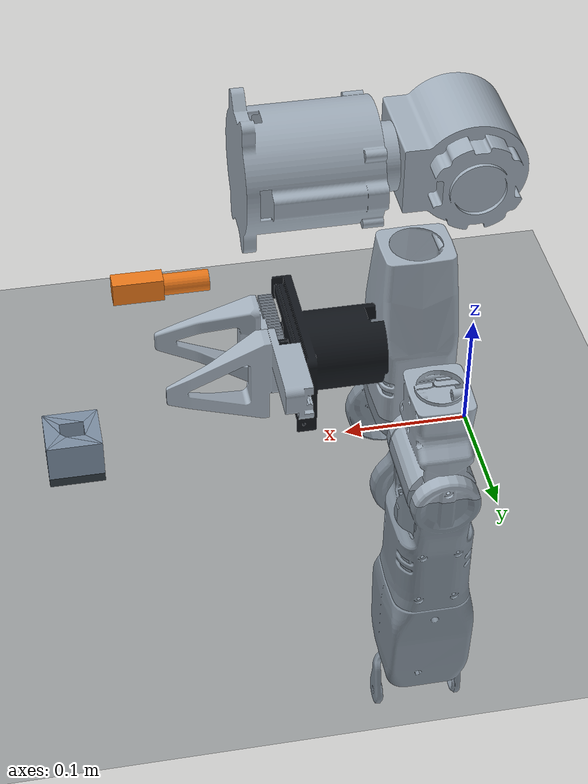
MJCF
<mujoco model="Official YAM articulated keyed insertion">
  <compiler angle="radian" />
  <asset>
    <mesh name="base" content_type="model/stl" file="../../assets/robots/yam/v1/assets/base.stl" />
    <mesh name="gripper" content_type="model/stl" file="../../assets/robots/yam/v1/assets/gripper.stl" />
    <mesh name="link1" content_type="model/stl" file="../../assets/robots/yam/v1/assets/link1.stl" />
    <mesh name="link2" content_type="model/stl" file="../../assets/robots/yam/v1/assets/link2.stl" />
    <mesh name="link3" content_type="model/stl" file="../../assets/robots/yam/v1/assets/link3.stl" />
    <mesh name="link4" content_type="model/stl" file="../../assets/robots/yam/v1/assets/link4.stl" />
    <mesh name="link5" content_type="model/stl" file="../../assets/robots/yam/v1/assets/link5.stl" />
    <mesh name="tip_left" content_type="model/stl" file="../../assets/robots/yam/v1/assets/tip_left.stl" />
    <mesh name="tip_right" content_type="model/stl" file="../../assets/robots/yam/v1/assets/tip_right.stl" />
    <mesh name="peg" file="../keyed_insertion/assets/peg.stl" />
    <mesh name="wall0" file="../keyed_insertion/assets/wall_0.stl" />
    <mesh name="wall1" file="../keyed_insertion/assets/wall_1.stl" />
    <mesh name="wall2" file="../keyed_insertion/assets/wall_2.stl" />
    <mesh name="wall3" file="../keyed_insertion/assets/wall_3.stl" />
    <mesh name="wall4" file="../keyed_insertion/assets/wall_4.stl" />
    <mesh name="wall5" file="../keyed_insertion/assets/wall_5.stl" />
    <mesh name="wall6" file="../keyed_insertion/assets/wall_6.stl" />
    <mesh name="wall7" file="../keyed_insertion/assets/wall_7.stl" />
    <mesh name="wall8" file="../keyed_insertion/assets/wall_8.stl" />
    <texture name="studio_sky" type="skybox" builtin="gradient" rgb1=".72 .79 .86" rgb2=".94 .96 .98" width="512" height="3072" />
    <material name="studio_arm" rgba=".63 .68 .73 1" specular=".65" shininess=".65" reflectance=".03" />
    <material name="studio_dark" rgba=".07 .085 .105 1" specular=".3" shininess=".35" reflectance="0" />
    <material name="studio_socket" rgba=".48 .55 .63 1" specular=".75" shininess=".7" reflectance=".05" />
    <material name="studio_peg" rgba=".92 .47 .10 1" specular=".55" shininess=".6" reflectance=".02" />
    <material name="studio_bench" rgba=".18 .215 .245 1" specular=".2" shininess=".2" reflectance="0" />
  </asset>
  <worldbody>
    <body name="base">
      <inertial pos="-3.83909e-05 2.40069e-05 0.0247678" quat="0.500738 0.500087 -0.499793 0.499381" mass="0.873654" diaginertia="0.00169404 0.00157059 0.000678306" />
      <geom pos="0.0374957 0.0464006 0.187501" quat="-1.29867e-06 -0.707108 -1.29868e-06 0.707105" type="mesh" contype="2" conaffinity="1" group="0" density="0" mesh="base" name="yam_geom_0" material="studio_arm" />
      <body name="link1" pos="-2.49778e-07 0 0.068" quat="-1.29867e-06 -0.707108 -1.29868e-06 0.707105">
        <inertial pos="-0.0233636 -0.00172503 -0.00727828" quat="0.350044 0.317088 -0.649919 0.595424" mass="0.101218" diaginertia="0.000134913 0.000106251 4.71815e-05" />
        <joint name="joint1" range="-2.61799 3.14159" actuatorfrcrange="-10 10" axis="-1 0 0" damping=".15" armature=".015" />
        <geom pos="-0.119501 -0.0464 -0.0374968" quat="1 0 0 0" type="mesh" contype="2" conaffinity="1" group="0" density="0" mesh="link1" name="yam_geom_1" material="studio_arm" />
        <body name="link2" pos="-0.0455 -0.0339 -0.02" quat="1.32679e-06 0 0 -1">
          <inertial pos="0.000134495 -0.0331253 0.129165" quat="1 0.000113256 1.56201e-05 -8.02079e-05" mass="1.46908" diaginertia="0.0146686 0.014599 0.000800088" />
          <joint name="joint2" range="0 3.66519" actuatorfrcrange="-10 10" axis="0 1 0" damping=".15" armature=".015" />
          <geom pos="-0.0740001 -0.08025 -0.0174977" quat="1 0 0 0" type="mesh" contype="2" conaffinity="1" group="0" density="0" mesh="link2" name="yam_geom_2" material="studio_arm" />
          <body name="link3" pos="4.08431e-07 -0.0688 0.264" quat="1.32679e-06 0 0 -1">
            <inertial pos="-0.0556042 -0.0340514 -0.135083" quat="0.990999 0.00518347 0.0472812 0.125137" mass="0.982553" diaginertia="0.00765198 0.0076296 0.000876442" />
            <joint name="joint3" range="0 3.14159" actuatorfrcrange="-10 10" axis="0 1 0" damping=".15" armature=".015" />
            <geom pos="-0.0740003 -0.0813 -0.281499" type="mesh" contype="2" conaffinity="1" group="0" density="0" mesh="link3" name="yam_geom_3" material="studio_arm" />
            <body name="link4" pos="-0.0600003 -0.0688 -0.244999" quat="1 0 0 0">
              <inertial pos="-0.0550959 0.032726 -0.0575534" quat="0.127536 0.44423 0.0147443 0.886666" mass="0.462165" diaginertia="0.000787888 0.00076643 0.00028779" />
              <joint name="joint4" range="-1.69297 1.5708" actuatorfrcrange="-10 10" axis="0 1 0" damping=".15" armature=".015" />
              <geom pos="-0.0140003 -0.0125 -0.0364989" quat="1 0 0 0" type="mesh" contype="2" conaffinity="1" group="0" density="0" mesh="link4" name="yam_geom_4" material="studio_arm" />
              <body name="link5" pos="-0.0405003 0.0338995 -0.0739989" quat="1 0 0 0">
                <inertial pos="0.0375847 -3.55003e-05 -0.000825911" quat="0.661372 -0.253166 -0.247107 0.661387" mass="0.403307" diaginertia="0.000219794 0.000195686 0.000169647" />
                <joint name="joint5" range="-1.5708 1.5708" actuatorfrcrange="-10 10" axis="1 0 0" damping=".15" armature=".015" />
                <geom pos="0.0265 -0.0463995 0.0375" quat="1 0 0 0" type="mesh" contype="2" conaffinity="1" group="0" density="0" mesh="link5" name="yam_geom_5" material="studio_arm" />
                <body name="gripper" pos="0.0404996 2.39858e-07 -0.0356" quat="1 0 0 0">
                  <inertial pos="-3.57064e-05 0.000249371 -0.0293133" quat="0.667981 0.744113 -0.0043308 0.00882784" mass="0.553219" diaginertia="0.000409687 0.000369758 0.000324415" />
                  <joint name="joint6" range="-2.0944 2.0944" actuatorfrcrange="-10 10" axis="0 0 -1" damping=".15" armature=".015" />
                  <geom pos="-0.014 -0.0463995 0.0731" quat="1 0 0 0" type="mesh" contype="2" conaffinity="1" group="0" density="0" mesh="gripper" name="yam_geom_6" material="studio_dark" />
                  <body name="tip_left" pos="-0.0239931 0.0145119 -0.0566829" quat="1 0 0 0">
                    <inertial pos="0.014584 -0.042586 -0.0228318" quat="0.80517 -0.425818 -0.124987 0.393393" mass="0.069657" diaginertia="6.18569e-05 5.94605e-05 2.79862e-05" />
                    <geom pos="0.00999321 -0.0914614 0.129783" type="mesh" contype="2" conaffinity="1" group="0" density="0" mesh="tip_left" name="yam_geom_7" material="studio_arm" />
                  </body>
                  <body name="tip_right" pos="0.0239931 -0.0145119 -0.0566829" quat="1 0 0 0">
                    <inertial pos="-0.014584 0.042586 -0.0228318" quat="0.80517 0.425818 0.124987 0.393393" mass="0.069657" diaginertia="6.18569e-05 5.94605e-05 2.79862e-05" />
                    <geom pos="-0.0379932 -0.00133753 0.129783" quat="1 0 0 0" type="mesh" contype="2" conaffinity="1" group="0" density="0" mesh="tip_right" name="yam_geom_8" material="studio_arm" />
                  </body>
                  <body name="held_peg" pos="0 0 -.17">
                    <inertial pos="0 0 .019" mass=".025" diaginertia=".0000035 .0000035 .000001" />
                    <geom name="peg" type="mesh" mesh="peg" contype="2" conaffinity="1" material="studio_peg" />
                    <site name="peg_tip" size=".002" rgba="1 .2 .1 0" />
                  </body>
                  <geom name="peg_adapter" type="cylinder" pos="0 0 -.115" size=".008 .017" contype="2" conaffinity="1" material="studio_peg" />
                </body>
              </body>
            </body>
          </body>
        </body>
      </body>
    </body>
    <body name="socket" pos=".32 0 0">
      <geom name="socket_floor" type="box" pos="0 0 .004" size=".022 .020 .004" conaffinity="3" material="studio_bench" />
      <geom name="socket_wall_0" type="mesh" mesh="wall0" conaffinity="3" material="studio_socket" />
      <geom name="socket_wall_1" type="mesh" mesh="wall1" conaffinity="3" material="studio_socket" />
      <geom name="socket_wall_2" type="mesh" mesh="wall2" conaffinity="3" material="studio_socket" />
      <geom name="socket_wall_3" type="mesh" mesh="wall3" conaffinity="3" material="studio_socket" />
      <geom name="socket_wall_4" type="mesh" mesh="wall4" conaffinity="3" material="studio_socket" />
      <geom name="socket_wall_5" type="mesh" mesh="wall5" conaffinity="3" material="studio_socket" />
      <geom name="socket_wall_6" type="mesh" mesh="wall6" conaffinity="3" material="studio_socket" />
      <geom name="socket_wall_7" type="mesh" mesh="wall7" conaffinity="3" material="studio_socket" />
      <geom name="socket_wall_8" type="mesh" mesh="wall8" conaffinity="3" material="studio_socket" />
    </body>
    <geom name="bench" type="plane" size=".7 .7 .02" conaffinity="3" material="studio_bench" />
    <light name="studio_key" pos=".2 -.6 1.4" dir="0 .35 -1" diffuse=".8 .78 .73" specular=".8 .8 .8" castshadow="true" directional="true" />
    <light name="studio_fill" pos="-.4 .4 .8" dir=".5 -.3 -.8" diffuse=".36 .43 .52" specular=".25 .3 .4" castshadow="false" directional="true" />
    <light name="studio_rim" pos=".8 .5 1" dir="-.4 -.4 -1" diffuse=".42 .45 .5" specular=".6 .6 .6" castshadow="false" directional="true" />
    <camera name="overview" pos="0.95 -1.05 0.82" xyaxes="0.8210645514674284 0.5708353548297359 -0.0 -0.2522652932793071 0.3628473396483184 0.8970529694041725" fovy="38" />
    <camera name="insertion" pos="0.54 -0.3 0.28" xyaxes="0.8064049958557055 0.5913636636275175 -0.0 -0.31582156599663325 0.43066577181359067 0.8454488343120701" fovy="38" />
  </worldbody>
  <option timestep=".002" integrator="implicitfast" gravity="0 0 -9.81" iterations="100" />
  <default>
    <geom friction=".5 .005 .0001" solref=".005 1" solimp=".95 .99 .001" condim="3" />
  </default>
  <visual>
    <global offwidth="1440" offheight="1080" />
    <quality shadowsize="4096" offsamples="8" />
    <headlight ambient=".28 .28 .3" diffuse=".35 .35 .35" specular=".15 .15 .15" />
    <rgba haze=".83 .87 .9 1" />
  </visual>
  <actuator>
    <motor name="motor1" joint="joint1" ctrlrange="-10 10" ctrllimited="true" />
    <motor name="motor2" joint="joint2" ctrlrange="-10 10" ctrllimited="true" />
    <motor name="motor3" joint="joint3" ctrlrange="-10 10" ctrllimited="true" />
    <motor name="motor4" joint="joint4" ctrlrange="-10 10" ctrllimited="true" />
    <motor name="motor5" joint="joint5" ctrlrange="-10 10" ctrllimited="true" />
    <motor name="motor6" joint="joint6" ctrlrange="-10 10" ctrllimited="true" />
  </actuator>
</mujoco>
